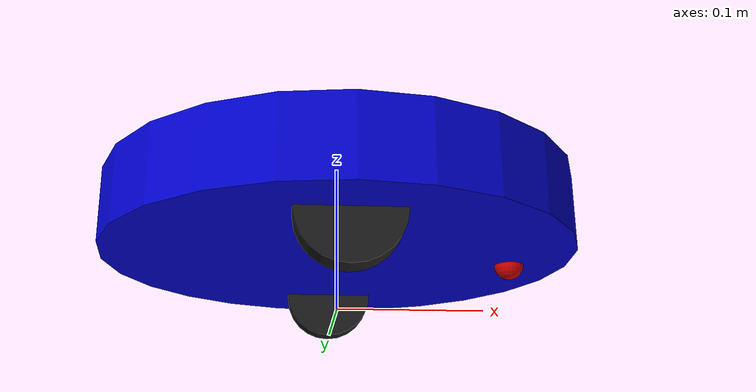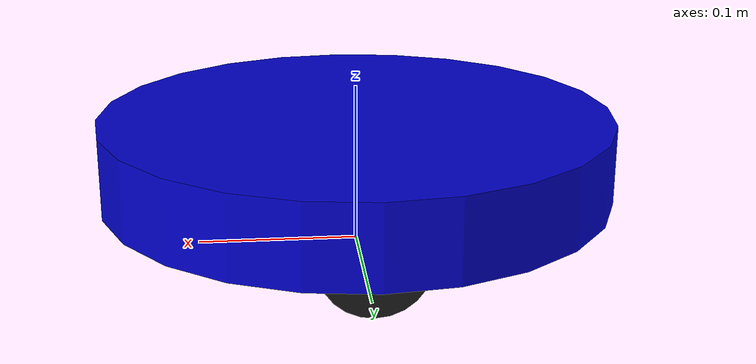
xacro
<?xml version="1.0"?>
<robot name="ros2_bot" xmlns:xacro="http://www.ros.org/wiki/xacro">

  <!-- 1. PROPERTIES (BASED ON YOUR MEASUREMENTS) -->
  <xacro:property name="M_PI" value="3.1415926535897931"/>

  <!-- Base Dimensions -->
  <xacro:property name="base_radius" value="0.16" />       <!-- 32 cm Diameter / 2 -->
  <xacro:property name="base_height" value="0.05" />        <!-- Arbitrary, for visualization -->

  <!-- Wheel Properties (from Python node: WHEEL_DIAM=0.065, WHEEL_BASE=0.20) -->
  <xacro:property name="wheel_diameter" value="0.065" />
  <xacro:property name="wheel_radius" value="${wheel_diameter/2.0}" />
  <xacro:property name="wheel_width" value="0.02" />        <!-- Arbitrary wheel thickness -->
  <xacro:property name="wheel_separation" value="0.22" />   <!-- Distance between wheel centers -->

  <!-- Sensor Properties -->
  <xacro:property name="sensor_z_offset" value="0.09" />   <!-- 9 cm up from ground -->
  <xacro:property name="caster_x_offset" value="0.12" />    <!-- 12 cm forward -->

  <!-- Mass/Inertia properties (simple placeholders, essential for physics) -->
  <xacro:property name="base_mass" value="1.0" />
  <xacro:property name="wheel_mass" value="0.1" />

  <!-- 2. MACROS (Reusable Geometry Definitions) -->

  <!-- Macro for the wheel geometry and inertia -->
  <xacro:macro name="wheel_geometry">
    <geometry>
      <!-- Cylinder rotated 90 degrees around Y-axis to stand up -->
      <cylinder radius="${wheel_radius}" length="${wheel_width}"/>
    </geometry>
    <origin xyz="0 0 0" rpy="${M_PI/2} 0 0"/>
  </xacro:macro>

  <xacro:macro name="cylinder_inertia" params="m r h">
    <inertia ixx="${m*(3*r*r+h*h)/12}" ixy="0" ixz="0"
             iyy="${m*(3*r*r+h*h)/12}" iyz="0" izz="${m*r*r/2}" />
  </xacro:macro>

  <!-- Macro for the caster wheel (sphere visualization) -->
  <xacro:macro name="caster_geometry">
    <geometry>
      <sphere radius="0.01"/>
    </geometry>
    <origin xyz="0 0 0" rpy="0 0 0"/>
  </xacro:macro>

  <!-- 3. BASE LINK (The core of the robot) -->
  <link name="base_link">
    <visual>
      <geometry>
        <!-- Visualize the cylindrical base -->
        <cylinder radius="${base_radius}" length="${base_height}"/>
      </geometry>
      <origin xyz="0 0 ${wheel_radius + base_height/2.0}" rpy="0 0 0"/>
      <material name="blue">
        <color rgba="0.0 0.0 0.8 1.0"/>
      </material>
    </visual>

    <collision>
      <geometry>
        <cylinder radius="${base_radius}" length="${base_height}"/>
      </geometry>
      <origin xyz="0 0 ${wheel_radius + base_height/2.0}" rpy="0 0 0"/>
    </collision>

    <inertial>
      <origin xyz="0 0 0" rpy="0 0 0"/>
      <mass value="${base_mass}"/>
      <!-- Use cylinder_inertia macro -->
      <xacro:cylinder_inertia m="${base_mass}" r="${base_radius}" h="${base_height}"/>
    </inertial>
  </link>

  <!-- 4. DRIVE WHEELS (Left and Right) -->

  <xacro:macro name="drive_wheel" params="prefix parent reflect_y">
    <link name="${prefix}_wheel_link">
      <visual>
        <xacro:wheel_geometry/>
        <material name="black">
          <color rgba="0.1 0.1 0.1 1.0"/>
        </material>
      </visual>
      <collision>
        <xacro:wheel_geometry/>
      </collision>
      <inertial>
        <mass value="${wheel_mass}"/>
        <origin xyz="0 0 0" rpy="0 0 0"/>
        <xacro:cylinder_inertia m="${wheel_mass}" r="${wheel_radius}" h="${wheel_width}"/>
      </inertial>
    </link>

    <!-- Joint connecting the wheel to the base -->
    <joint name="${prefix}_wheel_joint" type="continuous">
      <parent link="${parent}"/>
      <child link="${prefix}_wheel_link"/>
      <!-- The wheels are placed wheel_separation/2 from the center of the base,
           and are resting on the ground (at z=wheel_radius) -->
      <origin xyz="0 ${reflect_y * wheel_separation/2.0} ${wheel_radius}" rpy="0 0 0"/>
      <axis xyz="0 1 0"/> <!-- Rotation around the Y-axis -->
    </joint>

    <!-- ROS 2 Control (Required for Gazebo, good practice for Nav2) -->
    <gazebo reference="${prefix}_wheel_link">
      <material>Gazebo/DarkGrey</material>
    </gazebo>
  </xacro:macro>

  <!-- Instantiate the wheels -->
  <xacro:drive_wheel prefix="left" parent="base_link" reflect_y="1"/>
  <xacro:drive_wheel prefix="right" parent="base_link" reflect_y="-1"/>

  <!-- 5. CASTER WHEEL -->
  <link name="caster_link">
    <visual>
      <xacro:caster_geometry/>
      <material name="red">
        <color rgba="0.8 0.0 0.0 1.0"/>
      </material>
    </visual>
    <collision>
      <xacro:caster_geometry/>
    </collision>
    <!-- Mass can be very small for a caster that just rolls -->
    <inertial>
        <mass value="0.01"/>
        <origin xyz="0 0 0" rpy="0 0 0"/>
        <inertia ixx="0.001" ixy="0" ixz="0" iyy="0.001" iyz="0" izz="0.001"/>
    </inertial>
  </link>

  <joint name="caster_joint" type="fixed">
    <parent link="base_link"/>
    <child link="caster_link"/>
    <!-- Positioned forward by caster_x_offset, and on the ground -->
    <origin xyz="${caster_x_offset} 0 ${wheel_radius}" rpy="0 0 0"/>
  </joint>

  <!-- 6. SENSOR LINKS (IMU and Lidar) -->

  <!-- IMU Link -->
  <link name="imu_link"/>
  <joint name="imu_joint" type="fixed">
    <parent link="base_link"/>
    <child link="imu_link"/>
    <!-- IMU positioned at the center of the base, 9cm up from the ground (wheel_radius = 3.25cm, base_height/2 = 2.5cm) -->
    <origin xyz="0 0 ${sensor_z_offset}" rpy="0 0 0"/>
  </joint>

  <!-- Laser Scanner (Lidar) Link -->
  <link name="laser_link"/>
  <joint name="laser_joint" type="fixed">
    <parent link="base_link"/>
    <child link="laser_link"/>
    <!-- Laser positioned at the center of the base, 9cm up from the ground -->
    <origin xyz="0 0 ${sensor_z_offset}" rpy="0 0 0"/>
  </joint>

  <!-- Add a gazebo material reference for the laser link (optional) -->
  <gazebo reference="laser_link">
    <material>Gazebo/Red</material>
  </gazebo>

</robot>
